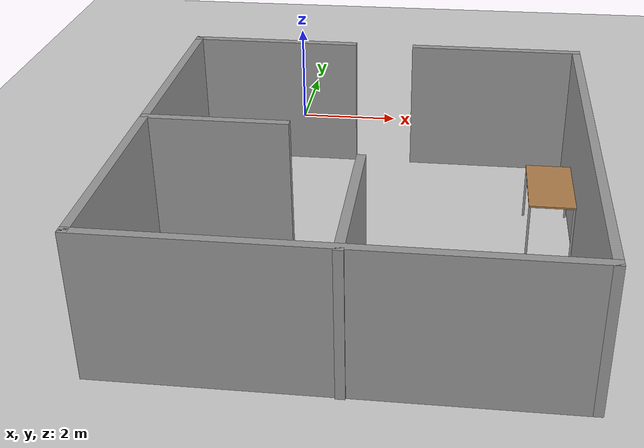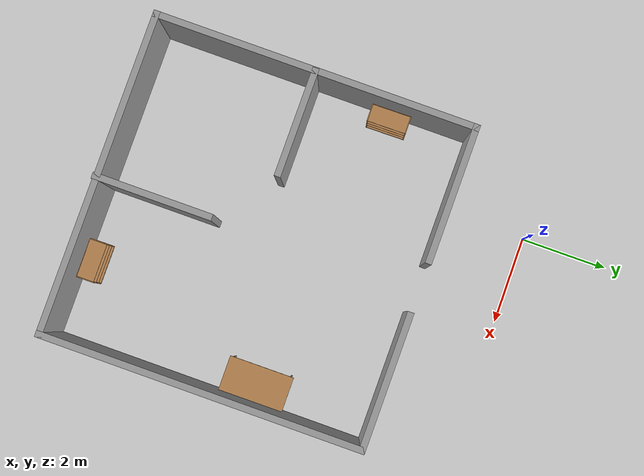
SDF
<sdf version="1.7">
 <world name="default">
  <physics type="ode">
   <max_step_size>0.001</max_step_size>
   <real_time_factor>1</real_time_factor>
   <real_time_update_rate>1000</real_time_update_rate>
  </physics>
  <light name="sun" type="directional">
   <pose>0 0 10 0 -0 0</pose>
   <diffuse>0.8 0.8 0.8 1</diffuse>
   <specular>0.2 0.2 0.2 1</specular>
   <attenuation>
    <range>1000</range>
    <constant>0.9</constant>
    <linear>0.01</linear>
    <quadratic>0.001</quadratic>
   </attenuation>
   <direction>-0.5 0.1 -0.9</direction>
   <spot><inner_angle>0</inner_angle><outer_angle>0</outer_angle><falloff>0</falloff></spot>
  </light>
  <model name="ground_plane">
   <static>1</static>
   <link name="link">
    <collision name="collision">
     <geometry><plane><normal>0 0 1</normal><size>100 100</size></plane></geometry>
     <surface>
      <contact><collide_bitmask>65535</collide_bitmask></contact>
      <friction><ode><mu>100</mu><mu2>50</mu2></ode></friction>
     </surface>
    </collision>
    <visual name="visual">
     <cast_shadows>0</cast_shadows>
     <geometry><plane><normal>0 0 1</normal><size>100 100</size></plane></geometry>
     <material>
      <script><uri>file://media/materials/scripts/gazebo.material</uri><name>Gazebo/Grey</name></script>
     </material>
    </visual>
   </link>
  </model>
  <gravity>0 0 -9.8</gravity>
  <magnetic_field>6e-06 2.3e-05 -4.2e-05</magnetic_field>
  <atmosphere type="adiabatic"/>
  <scene><ambient>0.4 0.4 0.4 1</ambient><background>0.7 0.7 0.7 1</background><shadows>1</shadows></scene>
  <spherical_coordinates>
   <surface_model>EARTH_WGS84</surface_model>
   <latitude_deg>0</latitude_deg>
   <longitude_deg>0</longitude_deg>
   <elevation>0</elevation>
   <heading_deg>0</heading_deg>
  </spherical_coordinates>
  <model name="test_room_1">
   <pose>1.27557 -5.66125 0 0 -0 1.56549</pose>
   <link name="Wall_27">
    <collision name="Wall_27_Collision">
     <geometry><box><size>7.5 0.15 2.5</size></box></geometry>
     <pose>0 0 1.25 0 -0 0</pose>
    </collision>
    <visual name="Wall_27_Visual">
     <pose>0 0 1.25 0 -0 0</pose>
     <geometry><box><size>7.5 0.15 2.5</size></box></geometry>
     <material>
      <script><uri>file://media/materials/scripts/gazebo.material</uri><name>Gazebo/Grey</name></script>
      <ambient>1 1 1 1</ambient>
     </material>
     <meta><layer>0</layer></meta>
    </visual>
    <pose>0.014935 -4.3175 0 0 -0 0</pose>
   </link>
   <link name="Wall_30">
    <collision name="Wall_30_Collision">
     <geometry><box><size>7.5 0.15 2.5</size></box></geometry>
     <pose>0 0 1.25 0 -0 0</pose>
    </collision>
    <visual name="Wall_30_Visual">
     <pose>0 0 1.25 0 -0 0</pose>
     <geometry><box><size>7.5 0.15 2.5</size></box></geometry>
     <material>
      <script><uri>file://media/materials/scripts/gazebo.material</uri><name>Gazebo/Grey</name></script>
      <ambient>1 1 1 1</ambient>
     </material>
     <meta><layer>0</layer></meta>
    </visual>
    <pose>-3.66006 -0.642499 0 0 -0 1.5708</pose>
   </link>
   <link name="Wall_43">
    <collision name="Wall_43_Collision">
     <geometry><box><size>7.5 0.15 2.5</size></box></geometry>
     <pose>0 0 1.25 0 -0 0</pose>
    </collision>
    <visual name="Wall_43_Visual">
     <pose>0 0 1.25 0 -0 0</pose>
     <geometry><box><size>7.5 0.15 2.5</size></box></geometry>
     <material>
      <script><uri>file://media/materials/scripts/gazebo.material</uri><name>Gazebo/Grey</name></script>
      <ambient>1 1 1 1</ambient>
     </material>
     <meta><layer>0</layer></meta>
    </visual>
    <pose>0.014935 3.0325 0 0 -0 0</pose>
   </link>
   <link name="Wall_44">
    <collision name="Wall_44_Collision">
     <geometry><box><size>3.19832 0.15 2.5</size></box></geometry>
     <pose>0 0 1.25 0 -0 0</pose>
    </collision>
    <visual name="Wall_44_Visual">
     <pose>0 0 1.25 0 -0 0</pose>
     <geometry><box><size>3.19832 0.15 2.5</size></box></geometry>
     <material>
      <script><uri>file://media/materials/scripts/gazebo.material</uri><name>Gazebo/Grey</name></script>
      <ambient>1 1 1 1</ambient>
     </material>
     <meta><layer>0</layer></meta>
    </visual>
    <pose>3.68997 1.50834 0 0 -0 -1.57078</pose>
   </link>
   <link name="Wall_46">
    <collision name="Wall_46_Collision">
     <geometry><box><size>3.20168 0.15 2.5</size></box></geometry>
     <pose>0 0 1.25 0 -0 0</pose>
    </collision>
    <visual name="Wall_46_Visual">
     <pose>0 0 1.25 0 -0 0</pose>
     <geometry><box><size>3.20168 0.15 2.5</size></box></geometry>
     <material>
      <script><uri>file://media/materials/scripts/gazebo.material</uri><name>Gazebo/Grey</name></script>
      <ambient>1 1 1 1</ambient>
     </material>
     <meta><layer>0</layer></meta>
    </visual>
    <pose>3.68997 -2.79166 0 0 -0 1.57078</pose>
   </link>
   <link name="Wall_48">
    <collision name="Wall_48_Collision">
     <geometry><box><size>2.5 0.15 2.5</size></box></geometry>
     <pose>0 0 1.25 0 -0 0</pose>
    </collision>
    <visual name="Wall_48_Visual">
     <pose>0 0 1.25 0 -0 0</pose>
     <geometry><box><size>2.5 0.15 2.5</size></box></geometry>
     <material>
      <script><uri>file://media/materials/scripts/gazebo.material</uri><name>Gazebo/Grey</name></script>
      <ambient>1 1 1 1</ambient>
     </material>
     <meta><layer>0</layer></meta>
    </visual>
    <pose>-1e-06 1.83918 0 0 -0 -1.5708</pose>
   </link>
   <link name="Wall_51">
    <collision name="Wall_51_Collision">
     <geometry><box><size>2.75 0.15 2.5</size></box></geometry>
     <pose>0 0 1.25 0 -0 0</pose>
    </collision>
    <visual name="Wall_51_Visual">
     <pose>0 0 1.25 0 -0 0</pose>
     <geometry><box><size>2.75 0.15 2.5</size></box></geometry>
     <material>
      <script><uri>file://media/materials/scripts/gazebo.material</uri><name>Gazebo/Grey</name></script>
      <ambient>1 1 1 1</ambient>
     </material>
     <meta><layer>0</layer></meta>
    </visual>
    <pose>-2.39 -0.715822 0 0 -0 0</pose>
   </link>
   <static>1</static>
  </model>
  <model name="table">
   <static>1</static>
   <link name="link">
    <collision name="surface">
     <pose>0 0 1 0 -0 0</pose>
     <geometry><box><size>1.5 0.8 0.03</size></box></geometry>
     <surface><friction><ode><mu>0.6</mu><mu2>0.6</mu2></ode></friction></surface>
    </collision>
    <visual name="visual1">
     <pose>0 0 1 0 -0 0</pose>
     <geometry><box><size>1.5 0.8 0.03</size></box></geometry>
     <material>
      <script><uri>file://media/materials/scripts/gazebo.material</uri><name>Gazebo/Wood</name></script>
     </material>
    </visual>
    <collision name="front_left_leg">
     <pose>0.68 0.38 0.5 0 -0 0</pose>
     <geometry><cylinder><radius>0.02</radius><length>1</length></cylinder></geometry>
    </collision>
    <visual name="front_left_leg">
     <pose>0.68 0.38 0.5 0 -0 0</pose>
     <geometry><cylinder><radius>0.02</radius><length>1</length></cylinder></geometry>
     <material>
      <script><uri>file://media/materials/scripts/gazebo.material</uri><name>Gazebo/Grey</name></script>
     </material>
    </visual>
    <collision name="front_right_leg">
     <pose>0.68 -0.38 0.5 0 -0 0</pose>
     <geometry><cylinder><radius>0.02</radius><length>1</length></cylinder></geometry>
    </collision>
    <visual name="front_right_leg">
     <pose>0.68 -0.38 0.5 0 -0 0</pose>
     <geometry><cylinder><radius>0.02</radius><length>1</length></cylinder></geometry>
     <material>
      <script><uri>file://media/materials/scripts/gazebo.material</uri><name>Gazebo/Grey</name></script>
     </material>
    </visual>
    <collision name="back_right_leg">
     <pose>-0.68 -0.38 0.5 0 -0 0</pose>
     <geometry><cylinder><radius>0.02</radius><length>1</length></cylinder></geometry>
    </collision>
    <visual name="back_right_leg">
     <pose>-0.68 -0.38 0.5 0 -0 0</pose>
     <geometry><cylinder><radius>0.02</radius><length>1</length></cylinder></geometry>
     <material>
      <script><uri>file://media/materials/scripts/gazebo.material</uri><name>Gazebo/Grey</name></script>
     </material>
    </visual>
    <collision name="back_left_leg">
     <pose>-0.68 0.38 0.5 0 -0 0</pose>
     <geometry><cylinder><radius>0.02</radius><length>1</length></cylinder></geometry>
    </collision>
    <visual name="back_left_leg">
     <pose>-0.68 0.38 0.5 0 -0 0</pose>
     <geometry><cylinder><radius>0.02</radius><length>1</length></cylinder></geometry>
     <material>
      <script><uri>file://media/materials/scripts/gazebo.material</uri><name>Gazebo/Grey</name></script>
     </material>
    </visual>
   </link>
   <pose>5.10446 -4.65549 0 0 0 -1.57275</pose>
  </model>
  <model name="bookshelf">
   <static>1</static>
   <link name="link">
    <inertial><mass>1</mass></inertial>
    <collision name="back">
     <pose>0 0.005 0.6 0 -0 0</pose>
     <geometry><box><size>0.9 0.01 1.2</size></box></geometry>
    </collision>
    <visual name="visual1">
     <pose>0 0.005 0.6 0 -0 0</pose>
     <geometry><box><size>0.9 0.01 1.2</size></box></geometry>
     <material>
      <script><uri>file://media/materials/scripts/gazebo.material</uri><name>Gazebo/Wood</name></script>
     </material>
    </visual>
    <collision name="left_side">
     <pose>0.45 -0.195 0.6 0 -0 0</pose>
     <geometry><box><size>0.02 0.4 1.2</size></box></geometry>
    </collision>
    <visual name="visual2">
     <pose>0.45 -0.195 0.6 0 -0 0</pose>
     <geometry><box><size>0.02 0.4 1.2</size></box></geometry>
     <material>
      <script><uri>file://media/materials/scripts/gazebo.material</uri><name>Gazebo/Wood</name></script>
     </material>
    </visual>
    <collision name="right_side">
     <pose>-0.45 -0.195 0.6 0 -0 0</pose>
     <geometry><box><size>0.02 0.4 1.2</size></box></geometry>
    </collision>
    <visual name="visual3">
     <pose>-0.45 -0.195 0.6 0 -0 0</pose>
     <geometry><box><size>0.02 0.4 1.2</size></box></geometry>
     <material>
      <script><uri>file://media/materials/scripts/gazebo.material</uri><name>Gazebo/Wood</name></script>
     </material>
    </visual>
    <collision name="bottom">
     <pose>0 -0.195 0.03 0 -0 0</pose>
     <geometry><box><size>0.88 0.4 0.06</size></box></geometry>
    </collision>
    <visual name="visual4">
     <pose>0 -0.195 0.03 0 -0 0</pose>
     <geometry><box><size>0.88 0.4 0.06</size></box></geometry>
     <material>
      <script><uri>file://media/materials/scripts/gazebo.material</uri><name>Gazebo/Wood</name></script>
     </material>
    </visual>
    <collision name="top">
     <pose>0 -0.195 1.19 0 -0 0</pose>
     <geometry><box><size>0.88 0.4 0.02</size></box></geometry>
    </collision>
    <visual name="visual5">
     <pose>0 -0.195 1.19 0 -0 0</pose>
     <geometry><box><size>0.88 0.4 0.02</size></box></geometry>
     <material>
      <script><uri>file://media/materials/scripts/gazebo.material</uri><name>Gazebo/Wood</name></script>
     </material>
    </visual>
    <collision name="low_shelf">
     <pose>0 -0.195 0.43 0 -0 0</pose>
     <geometry><box><size>0.88 0.4 0.02</size></box></geometry>
    </collision>
    <visual name="visual6">
     <pose>0 -0.195 0.43 0 -0 0</pose>
     <geometry><box><size>0.88 0.4 0.02</size></box></geometry>
     <material>
      <script><uri>file://media/materials/scripts/gazebo.material</uri><name>Gazebo/Wood</name></script>
     </material>
    </visual>
    <collision name="high_shelf">
     <pose>0 -0.195 0.8 0 -0 0</pose>
     <geometry><box><size>0.88 0.4 0.02</size></box></geometry>
    </collision>
    <visual name="visual7">
     <pose>0 -0.195 0.8 0 -0 0</pose>
     <geometry><box><size>0.88 0.4 0.02</size></box></geometry>
     <material>
      <script><uri>file://media/materials/scripts/gazebo.material</uri><name>Gazebo/Wood</name></script>
     </material>
    </visual>
   </link>
   <pose>3.72514 -9.21218 0 0 -0 3.13753</pose>
  </model>
  <model name="bookshelf_0">
   <static>1</static>
   <link name="link">
    <inertial><mass>1</mass></inertial>
    <collision name="back">
     <pose>0 0.005 0.6 0 -0 0</pose>
     <geometry><box><size>0.9 0.01 1.2</size></box></geometry>
    </collision>
    <visual name="visual1">
     <pose>0 0.005 0.6 0 -0 0</pose>
     <geometry><box><size>0.9 0.01 1.2</size></box></geometry>
     <material>
      <script><uri>file://media/materials/scripts/gazebo.material</uri><name>Gazebo/Wood</name></script>
     </material>
    </visual>
    <collision name="left_side">
     <pose>0.45 -0.195 0.6 0 -0 0</pose>
     <geometry><box><size>0.02 0.4 1.2</size></box></geometry>
    </collision>
    <visual name="visual2">
     <pose>0.45 -0.195 0.6 0 -0 0</pose>
     <geometry><box><size>0.02 0.4 1.2</size></box></geometry>
     <material>
      <script><uri>file://media/materials/scripts/gazebo.material</uri><name>Gazebo/Wood</name></script>
     </material>
    </visual>
    <collision name="right_side">
     <pose>-0.45 -0.195 0.6 0 -0 0</pose>
     <geometry><box><size>0.02 0.4 1.2</size></box></geometry>
    </collision>
    <visual name="visual3">
     <pose>-0.45 -0.195 0.6 0 -0 0</pose>
     <geometry><box><size>0.02 0.4 1.2</size></box></geometry>
     <material>
      <script><uri>file://media/materials/scripts/gazebo.material</uri><name>Gazebo/Wood</name></script>
     </material>
    </visual>
    <collision name="bottom">
     <pose>0 -0.195 0.03 0 -0 0</pose>
     <geometry><box><size>0.88 0.4 0.06</size></box></geometry>
    </collision>
    <visual name="visual4">
     <pose>0 -0.195 0.03 0 -0 0</pose>
     <geometry><box><size>0.88 0.4 0.06</size></box></geometry>
     <material>
      <script><uri>file://media/materials/scripts/gazebo.material</uri><name>Gazebo/Wood</name></script>
     </material>
    </visual>
    <collision name="top">
     <pose>0 -0.195 1.19 0 -0 0</pose>
     <geometry><box><size>0.88 0.4 0.02</size></box></geometry>
    </collision>
    <visual name="visual5">
     <pose>0 -0.195 1.19 0 -0 0</pose>
     <geometry><box><size>0.88 0.4 0.02</size></box></geometry>
     <material>
      <script><uri>file://media/materials/scripts/gazebo.material</uri><name>Gazebo/Wood</name></script>
     </material>
    </visual>
    <collision name="low_shelf">
     <pose>0 -0.195 0.43 0 -0 0</pose>
     <geometry><box><size>0.88 0.4 0.02</size></box></geometry>
    </collision>
    <visual name="visual6">
     <pose>0 -0.195 0.43 0 -0 0</pose>
     <geometry><box><size>0.88 0.4 0.02</size></box></geometry>
     <material>
      <script><uri>file://media/materials/scripts/gazebo.material</uri><name>Gazebo/Wood</name></script>
     </material>
    </visual>
    <collision name="high_shelf">
     <pose>0 -0.195 0.8 0 -0 0</pose>
     <geometry><box><size>0.88 0.4 0.02</size></box></geometry>
    </collision>
    <visual name="visual7">
     <pose>0 -0.195 0.8 0 -0 0</pose>
     <geometry><box><size>0.88 0.4 0.02</size></box></geometry>
     <material>
      <script><uri>file://media/materials/scripts/gazebo.material</uri><name>Gazebo/Wood</name></script>
     </material>
    </visual>
   </link>
   <pose>-1.65634 -3.81246 0 0 -0 1.57668</pose>
  </model>
 </world>
</sdf>
